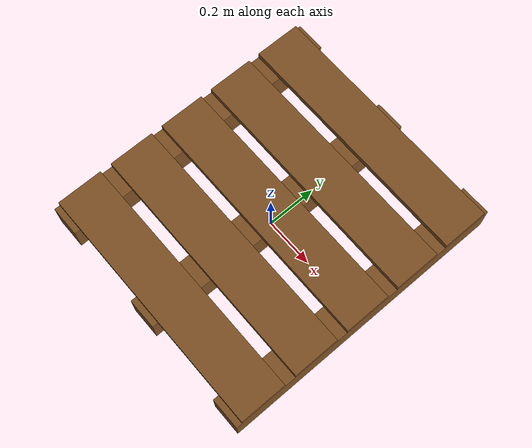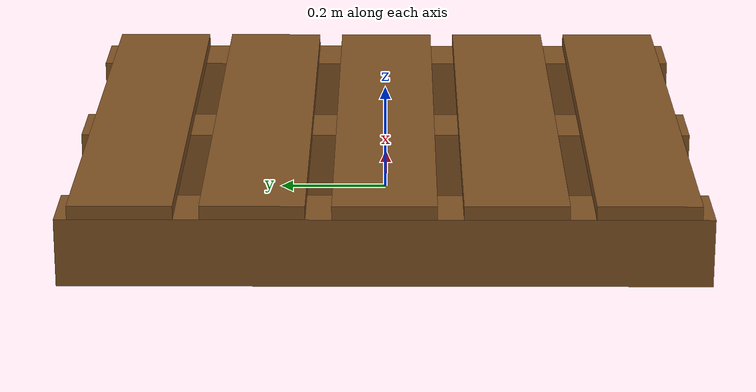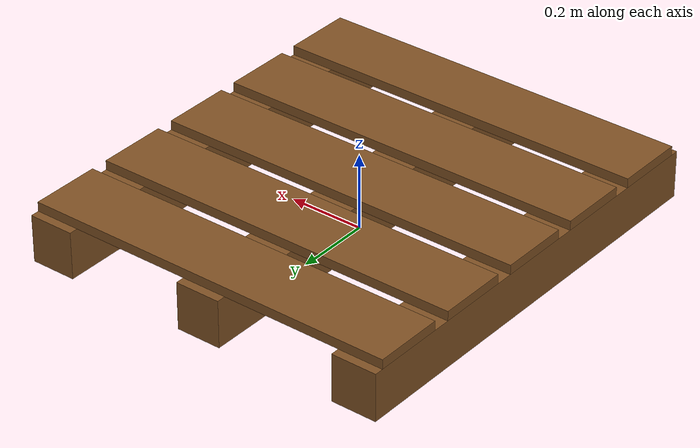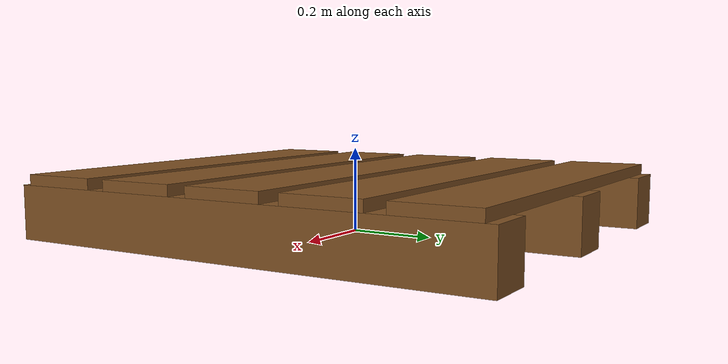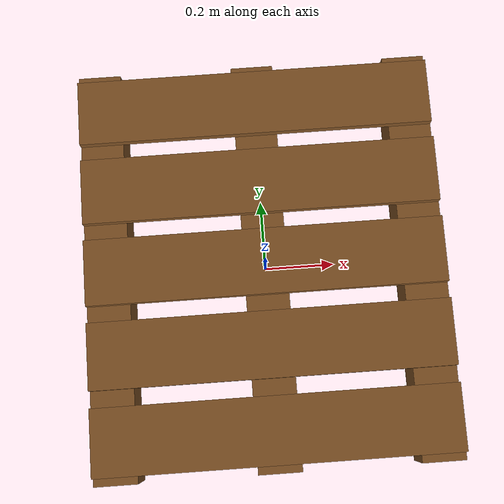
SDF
<?xml version="1.0"?>
<sdf version="1.9">
  <model name="wh_pallet">
    <static>true</static>
    <link name="body">
      <collision name="pallet_collision">
        <pose>0 0 0.075 0 0 0</pose>
        <geometry>
          <box>
            <size>1 1.15 0.15</size>
          </box>
        </geometry>
      </collision>
      <visual name="slat_0_visual">
        <pose>0 -0.46 0.1375 0 0 0</pose>
        <geometry>
          <box>
            <size>1 0.184 0.025</size>
          </box>
        </geometry>
        <material>
          <ambient>0.5 0.32 0.14 1</ambient>
          <diffuse>0.5 0.32 0.14 1</diffuse>
          <specular>0.06 0.06 0.06 1</specular>
        </material>
      </visual>
      <visual name="slat_1_visual">
        <pose>0 -0.23 0.1375 0 0 0</pose>
        <geometry>
          <box>
            <size>1 0.184 0.025</size>
          </box>
        </geometry>
        <material>
          <ambient>0.5 0.32 0.14 1</ambient>
          <diffuse>0.5 0.32 0.14 1</diffuse>
          <specular>0.06 0.06 0.06 1</specular>
        </material>
      </visual>
      <visual name="slat_2_visual">
        <pose>0 0 0.1375 0 0 0</pose>
        <geometry>
          <box>
            <size>1 0.184 0.025</size>
          </box>
        </geometry>
        <material>
          <ambient>0.5 0.32 0.14 1</ambient>
          <diffuse>0.5 0.32 0.14 1</diffuse>
          <specular>0.06 0.06 0.06 1</specular>
        </material>
      </visual>
      <visual name="slat_3_visual">
        <pose>0 0.23 0.1375 0 0 0</pose>
        <geometry>
          <box>
            <size>1 0.184 0.025</size>
          </box>
        </geometry>
        <material>
          <ambient>0.5 0.32 0.14 1</ambient>
          <diffuse>0.5 0.32 0.14 1</diffuse>
          <specular>0.06 0.06 0.06 1</specular>
        </material>
      </visual>
      <visual name="slat_4_visual">
        <pose>0 0.46 0.1375 0 0 0</pose>
        <geometry>
          <box>
            <size>1 0.184 0.025</size>
          </box>
        </geometry>
        <material>
          <ambient>0.5 0.32 0.14 1</ambient>
          <diffuse>0.5 0.32 0.14 1</diffuse>
          <specular>0.06 0.06 0.06 1</specular>
        </material>
      </visual>
      <visual name="runner_0_visual">
        <pose>-0.44 0 0.0625 0 0 0</pose>
        <geometry>
          <box>
            <size>0.12 1.15 0.125</size>
          </box>
        </geometry>
        <material>
          <ambient>0.5 0.32 0.14 1</ambient>
          <diffuse>0.5 0.32 0.14 1</diffuse>
          <specular>0.06 0.06 0.06 1</specular>
        </material>
      </visual>
      <visual name="runner_1_visual">
        <pose>0 0 0.0625 0 0 0</pose>
        <geometry>
          <box>
            <size>0.12 1.15 0.125</size>
          </box>
        </geometry>
        <material>
          <ambient>0.5 0.32 0.14 1</ambient>
          <diffuse>0.5 0.32 0.14 1</diffuse>
          <specular>0.06 0.06 0.06 1</specular>
        </material>
      </visual>
      <visual name="runner_2_visual">
        <pose>0.44 0 0.0625 0 0 0</pose>
        <geometry>
          <box>
            <size>0.12 1.15 0.125</size>
          </box>
        </geometry>
        <material>
          <ambient>0.5 0.32 0.14 1</ambient>
          <diffuse>0.5 0.32 0.14 1</diffuse>
          <specular>0.06 0.06 0.06 1</specular>
        </material>
      </visual>
    </link>
  </model>
</sdf>
